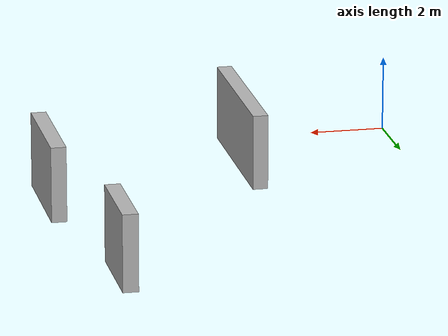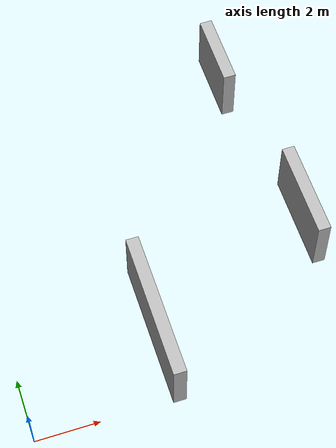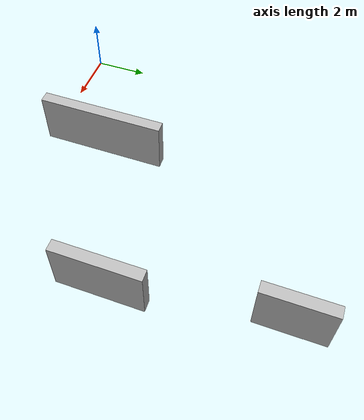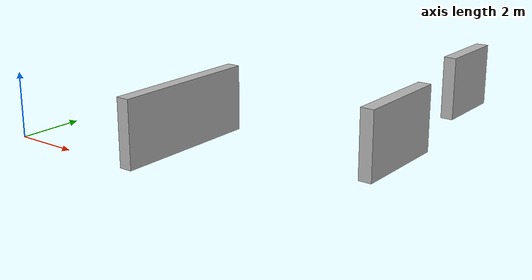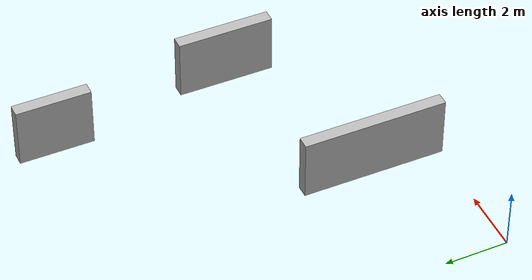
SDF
<sdf version="1.10">
 <world name="default">
  <model name="deadend_blocker_central_ring">
   <static>true</static>
   <pose>4.4 2.2 1.0 0 0 0</pose>
   <link name="link">
    <collision name="collision"><geometry><box><size>0.4 4.6 2.0</size></box></geometry></collision>
    <visual name="visual"><geometry><box><size>0.4 4.6 2.0</size></box></geometry></visual>
   </link>
  </model>
  <model name="deadend_blocker_east_north">
   <static>true</static>
   <pose>9.2 10.5 1.0 0 0 0</pose>
   <link name="link">
    <collision name="collision"><geometry><box><size>0.4 2.4 2.0</size></box></geometry></collision>
    <visual name="visual"><geometry><box><size>0.4 2.4 2.0</size></box></geometry></visual>
   </link>
  </model>
  <model name="deadend_blocker_east_south">
   <static>true</static>
   <pose>10.0 4.55 1.0 0 0 0</pose>
   <link name="link">
    <collision name="collision"><geometry><box><size>0.4 3.1 2.0</size></box></geometry></collision>
    <visual name="visual"><geometry><box><size>0.4 3.1 2.0</size></box></geometry></visual>
   </link>
  </model>
 </world>
</sdf>
